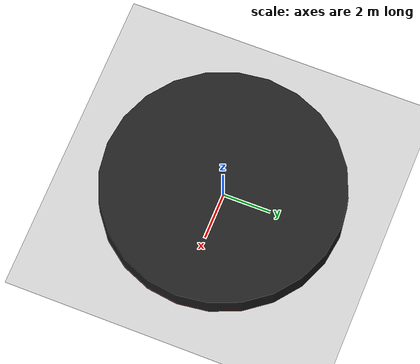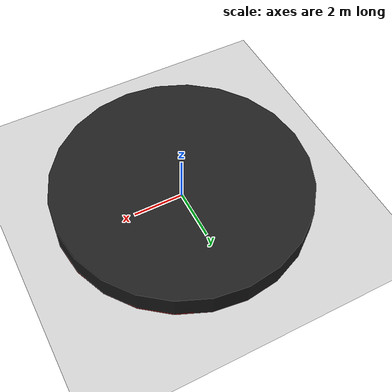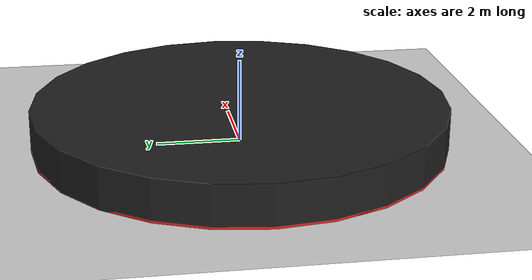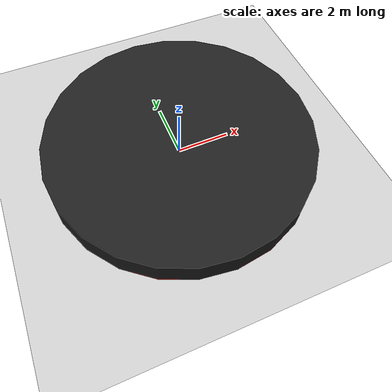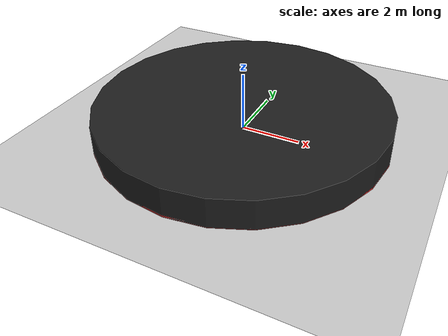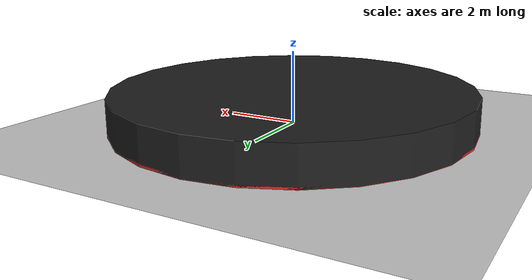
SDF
<?xml version="1.0" ?>
<sdf version="1.6">
  <world name="battlebot_arena">
    <!-- 중력 설정 -->
    <gravity>0 0 -9.8</gravity>

    <!-- 기본 물리엔진 설정 -->
    <physics type="ode">
      <max_step_size>0.001</max_step_size>
      <real_time_factor>1</real_time_factor>
      <real_time_update_rate>1000</real_time_update_rate>
      <ode>
        <solver>
          <type>quick</type>
          <iters>50</iters>
          <sor>1.3</sor>
        </solver>
        <constraints>
          <cfm>0.0</cfm>
          <erp>0.2</erp>
          <contact_max_correcting_vel>100.0</contact_max_correcting_vel>
          <contact_surface_layer>0.001</contact_surface_layer>
        </constraints>
      </ode>
    </physics>

    <!-- 기본 조명 -->
    <light name="sun" type="directional">
      <cast_shadows>true</cast_shadows>
      <pose>0 0 10 0 0 0</pose>
      <diffuse>0.8 0.8 0.8 1</diffuse>
      <specular>0.2 0.2 0.2 1</specular>
      <attenuation>
        <range>1000</range>
        <constant>0.9</constant>
        <linear>0.01</linear>
        <quadratic>0.001</quadratic>
      </attenuation>
      <direction>-0.5 0.1 -0.9</direction>
    </light>

    <!-- 추가 조명 -->
    <light name="arena_light_1" type="point">
      <pose>3 0 5 0 0 0</pose>
      <diffuse>0.5 0.5 0.5 1</diffuse>
      <specular>0.1 0.1 0.1 1</specular>
      <attenuation>
        <range>20</range>
        <constant>0.5</constant>
        <linear>0.01</linear>
        <quadratic>0.001</quadratic>
      </attenuation>
      <cast_shadows>false</cast_shadows>
    </light>

    <light name="arena_light_2" type="point">
      <pose>-3 0 5 0 0 0</pose>
      <diffuse>0.5 0.5 0.5 1</diffuse>
      <specular>0.1 0.1 0.1 1</specular>
      <attenuation>
        <range>20</range>
        <constant>0.5</constant>
        <linear>0.01</linear>
        <quadratic>0.001</quadratic>
      </attenuation>
      <cast_shadows>false</cast_shadows>
    </light>

    <!-- 기본 지면 -->
    <model name="ground_plane">
      <static>true</static>
      <link name="link">
        <collision name="collision">
          <geometry>
            <plane>
              <normal>0 0 1</normal>
              <size>100 100</size>
            </plane>
          </geometry>
          <surface>
            <friction>
              <ode>
                <mu>100</mu>
                <mu2>50</mu2>
              </ode>
            </friction>
          </surface>
        </collision>
        <visual name="visual">
          <cast_shadows>false</cast_shadows>
          <geometry>
            <plane>
              <normal>0 0 1</normal>
              <size>100 100</size>
            </plane>
          </geometry>
          <material>
            <script>
              <uri>file://media/materials/scripts/gazebo.material</uri>
              <name>Gazebo/Grey</name>
            </script>
          </material>
        </visual>
      </link>
    </model>

    <!-- 배틀 아레나 링 -->
    <model name="battle_arena">
      <static>true</static>
      <pose>0 0 0 0 0 0</pose>

      <!-- 아레나 바닥 -->
      <link name="floor">
        <collision name="floor_collision">
          <geometry>
            <cylinder>
              <radius>5.0</radius>
              <length>0.1</length>
            </cylinder>
          </geometry>
        </collision>
        <visual name="floor_visual">
          <geometry>
            <cylinder>
              <radius>5.0</radius>
              <length>0.1</length>
            </cylinder>
          </geometry>
          <material>
            <script>
              <uri>file://media/materials/scripts/gazebo.material</uri>
              <name>Gazebo/Red</name>
            </script>
          </material>
        </visual>
      </link>

      <!-- 아레나 벽 -->
      <link name="wall">
        <pose>0 0 0.5 0 0 0</pose>
        <collision name="wall_collision">
          <geometry>
            <cylinder>
              <radius>5.0</radius>
              <length>1.0</length>
              <hollow>true</hollow>
              <thickness>0.1</thickness>
            </cylinder>
          </geometry>
        </collision>
        <visual name="wall_visual">
          <geometry>
            <cylinder>
              <radius>5.0</radius>
              <length>1.0</length>
              <hollow>true</hollow>
              <thickness>0.1</thickness>
            </cylinder>
          </geometry>
          <material>
            <script>
              <uri>file://media/materials/scripts/gazebo.material</uri>
              <name>Gazebo/Black</name>
            </script>
          </material>
        </visual>
      </link>

      <!-- 장애물 1: 중앙 박스 -->
      <link name="obstacle_center">
        <pose>0 0 0.25 0 0 0</pose>
        <collision name="obstacle_center_collision">
          <geometry>
            <box>
              <size>1.0 1.0 0.5</size>
            </box>
          </geometry>
        </collision>
        <visual name="obstacle_center_visual">
          <geometry>
            <box>
              <size>1.0 1.0 0.5</size>
            </box>
          </geometry>
          <material>
            <script>
              <uri>file://media/materials/scripts/gazebo.material</uri>
              <name>Gazebo/Grey</name>
            </script>
          </material>
        </visual>
      </link>

      <!-- 장애물 2: 램프 -->
      <link name="obstacle_ramp">
        <pose>2.0 0 0.2 0 0.1 0</pose>
        <collision name="obstacle_ramp_collision">
          <geometry>
            <box>
              <size>2.0 1.5 0.1</size>
            </box>
          </geometry>
        </collision>
        <visual name="obstacle_ramp_visual">
          <geometry>
            <box>
              <size>2.0 1.5 0.1</size>
            </box>
          </geometry>
          <material>
            <script>
              <uri>file://media/materials/scripts/gazebo.material</uri>
              <name>Gazebo/White</name>
            </script>
          </material>
        </visual>
      </link>

      <!-- 장애물 3: 원통형 장애물 -->
      <link name="obstacle_cylinder">
        <pose>-2.0 2.0 0.3 0 0 0</pose>
        <collision name="obstacle_cylinder_collision">
          <geometry>
            <cylinder>
              <radius>0.4</radius>
              <length>0.6</length>
            </cylinder>
          </geometry>
        </collision>
        <visual name="obstacle_cylinder_visual">
          <geometry>
            <cylinder>
              <radius>0.4</radius>
              <length>0.6</length>
            </cylinder>
          </geometry>
          <material>
            <script>
              <uri>file://media/materials/scripts/gazebo.material</uri>
              <name>Gazebo/Blue</name>
            </script>
          </material>
        </visual>
      </link>

      <!-- 장애물 4: 원통형 장애물 -->
      <link name="obstacle_cylinder2">
        <pose>-2.0 -2.0 0.3 0 0 0</pose>
        <collision name="obstacle_cylinder2_collision">
          <geometry>
            <cylinder>
              <radius>0.4</radius>
              <length>0.6</length>
            </cylinder>
          </geometry>
        </collision>
        <visual name="obstacle_cylinder2_visual">
          <geometry>
            <cylinder>
              <radius>0.4</radius>
              <length>0.6</length>
            </cylinder>
          </geometry>
          <material>
            <script>
              <uri>file://media/materials/scripts/gazebo.material</uri>
              <name>Gazebo/Blue</name>
            </script>
          </material>
        </visual>
      </link>
    </model>

    <!-- GUI 설정 -->
    <gui fullscreen='0'>
      <camera name='user_camera'>
        <pose>10.0 -10.0 6.0 0.0 0.4 2.2</pose>
        <view_controller>orbit</view_controller>
      </camera>
    </gui>
  </world>
</sdf>
